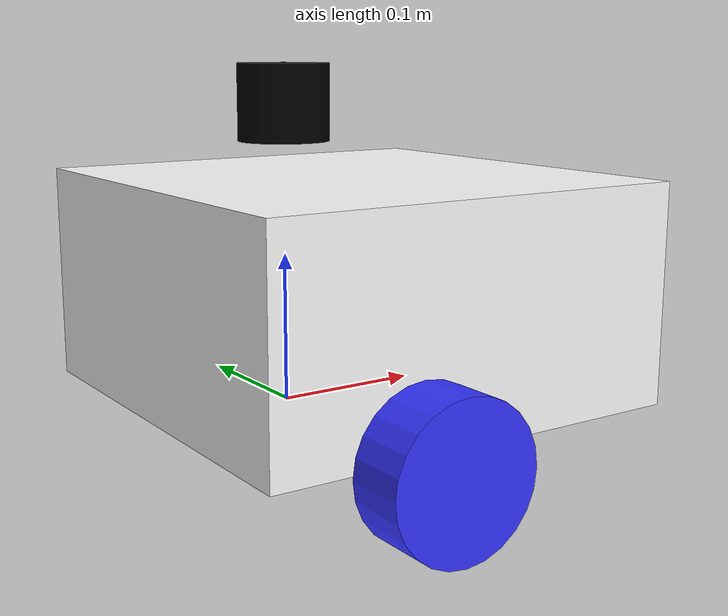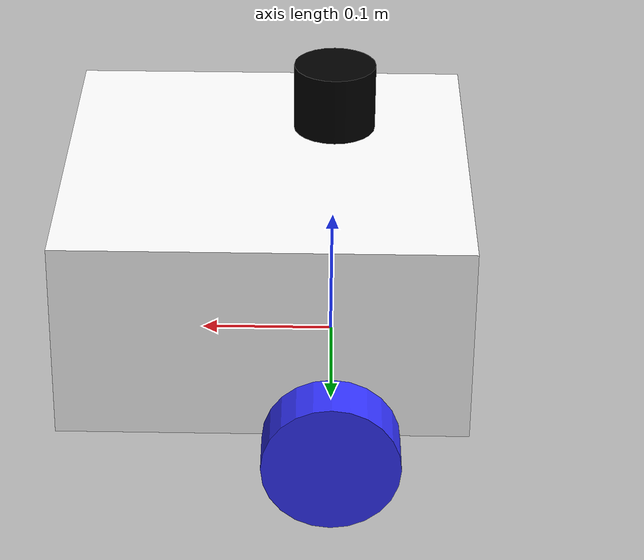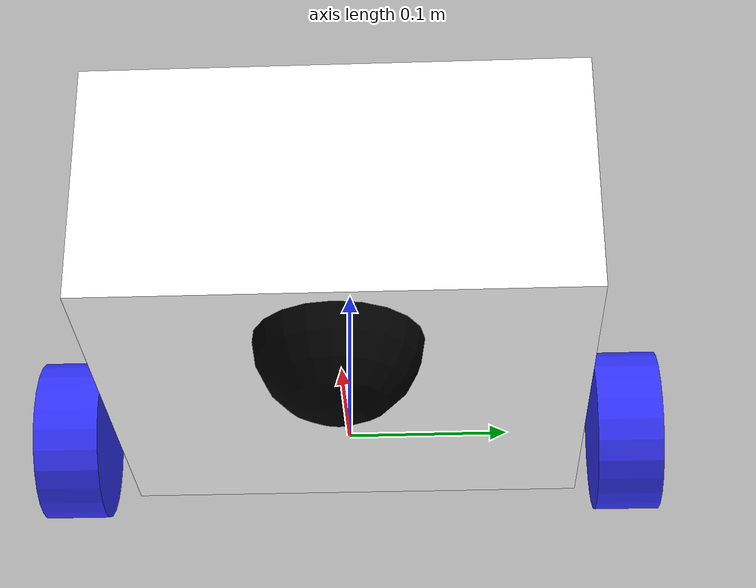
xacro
<?xml version="1.0"?>
<robot xmlns:xacro="http://www.ros.org/wiki/xacro">

<xacro:include filename="inertial_macros.xacro" />

<material name="white">
<color rgba="1 1 1 1"/>
</material>

<material name="orange">
<color rgba="1 0.3 0.1 1"/>
</material>

<material name="blue">
<color rgba="0.2 0.2 1 1"/>
</material>

<material name="black">
<color rgba="0 0 0 1"/>
</material>

<link name="base_link">
</link>

<joint name="chassis_joint" type="fixed">
    <parent link="base_link"/>
    <child link="chassis"/>
    <origin xyz="-0.1 0 0"/>
</joint>

<link name="chassis">

    <visual>
        <origin xyz="0.15 0 0.075" rpy="0 0 0"/>
        <geometry>
            <box size="0.3 0.3 0.15"/>
        </geometry>
        <material name="white"/>
    </visual>

    <collision>
        <origin xyz="0.15 0 0.075" rpy="0 0 0"/>
        <geometry>
            <box size="0.3 0.3 0.15"/>
        </geometry>
    </collision>

    <xacro:inertial_box mass="0.5" x="0.3" y="0.3" z="0.15">
        <origin xyz="0.15 0 0.075" rpy="0 0 0"/>
    </xacro:inertial_box>

    <gazebo reference="chassis">
        <material>Gazebo/White</material>
    </gazebo>

</link>

<joint name="left_wheel_joint" type="continuous">
    <parent link="base_link"/>
    <child link="left_wheel"/>
    <origin xyz="0 0.175 0" rpy="-${pi/2} 0 0"/>
    <axis xyz="0 0 1"/>
</joint>

<link name="left_wheel">

    <visual>
        <geometry>
            <cylinder length="0.04" radius="0.05"/>
        </geometry>
        <material name="blue"/>
    </visual>

    <collision>
        <geometry>
            <cylinder length="0.04" radius="0.05"/>
        </geometry>
    </collision>

    <xacro:inertial_cylinder mass="0.1" length="0.04" radius="0.05">
        <origin xyz="0 0 0" rpy="0 0 0"/>
    </xacro:inertial_cylinder>

    <gazebo reference="left_wheel">
        <material>Gazebo/Blue</material>
    </gazebo>

</link>

<joint name="right_wheel_joint" type="continuous">
    <parent link="base_link"/>
    <child link="right_wheel"/>
    <origin xyz="0 -0.175 0" rpy="${pi/2} 0 0"/>
    <axis xyz="0 0 -1"/>
</joint>

<link name="right_wheel">

    <visual>
        <geometry>
            <cylinder length="0.04" radius="0.05"/>
        </geometry>
        <material name="blue"/>
    </visual>

    <collision>
        <geometry>
            <cylinder length="0.04" radius="0.05"/>
        </geometry>
    </collision>

    <xacro:inertial_cylinder mass="0.1" length="0.04" radius="0.05">
        <origin xyz="0 0 0" rpy="0 0 0"/>
    </xacro:inertial_cylinder>

    <gazebo reference="right_wheel">
        <material>Gazebo/Blue</material>
    </gazebo>

</link>

<joint name="caster_wheel_joint" type="fixed">
    <parent link="chassis"/>
    <child link="caster_wheel"/>
    <origin xyz="0.24 0 0" rpy="0 0 0"/>
</joint>

<link name="caster_wheel">

    <visual>
        <geometry>
            <sphere radius="0.05"/>
        </geometry>
        <material name="black"/>
    </visual>

    <collision>
        <geometry>
            <sphere radius="0.05"/>
        </geometry>
    </collision>

    <xacro:inertial_sphere mass="0.1" radius="0.05">
        <origin xyz="0 0 0" rpy="0 0 0"/>
    </xacro:inertial_sphere>

    <gazebo reference="caster_wheel">
        <material>Gazebo/Black</material>
    </gazebo>

</link>

<link name="lidar_link">

  <visual>
    <geometry>
      <cylinder radius="0.03" length="0.05"/>
    </geometry>
    <material name="black"/>
  </visual>

  <collision>
    <geometry>
      <cylinder radius="0.03" length="0.05"/>
    </geometry>
  </collision>

  <xacro:inertial_cylinder mass="0.05" length="0.05" radius="0.03">
    <origin xyz="0 0 0" rpy="0 0 0"/>
  </xacro:inertial_cylinder>

</link>

<joint name="lidar_joint" type="fixed">
  <parent link="chassis"/>
  <child link="lidar_link"/>
  <origin xyz="0.1 0 0.2"/>
</joint>

<gazebo reference="lidar_link">
  <sensor type="ray" name="lidar">
    <update_rate>10</update_rate>

    <ray>
      <scan>
        <horizontal>
          <samples>360</samples>
          <min_angle>-1.57</min_angle>
          <max_angle>1.57</max_angle>
        </horizontal>
      </scan>

      <range>
        <min>0.1</min>
        <max>5.0</max>
      </range>
    </ray>

    <plugin name="laser" filename="libgazebo_ros_ray_sensor.so">
      <ros>
        <remapping>~/out:=/scan</remapping>
      </ros>

      <!-- ✅ Force ONLY LaserScan -->
      <output_type>sensor_msgs/LaserScan</output_type>

    </plugin>

  </sensor>
</gazebo>

</robot>
